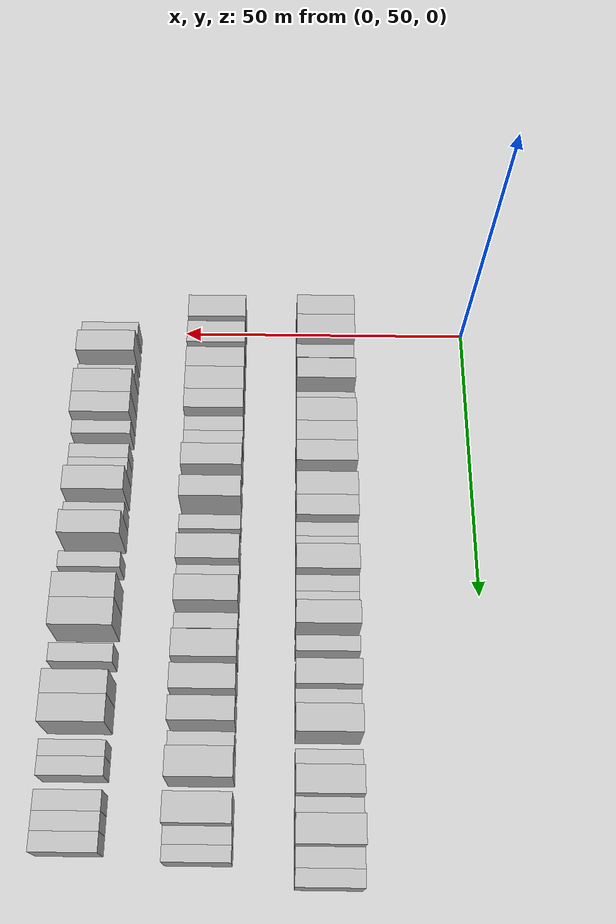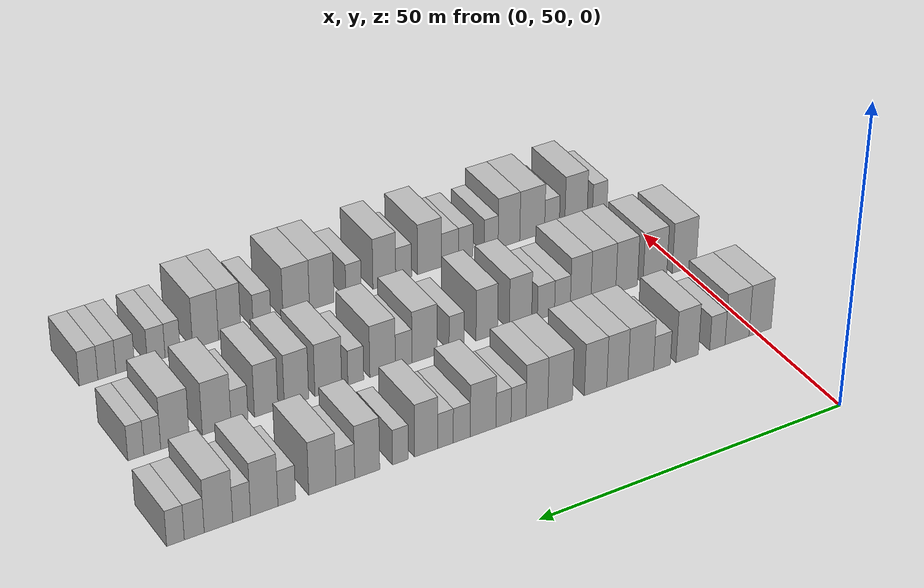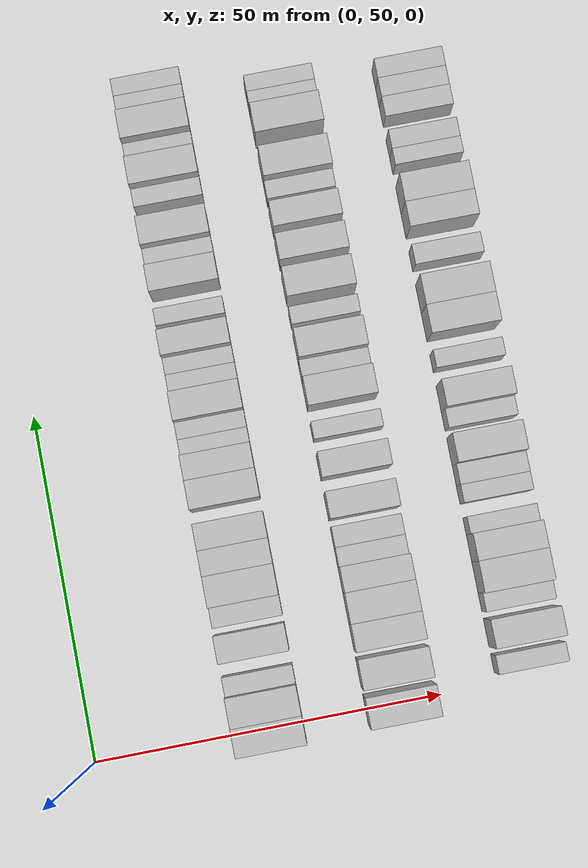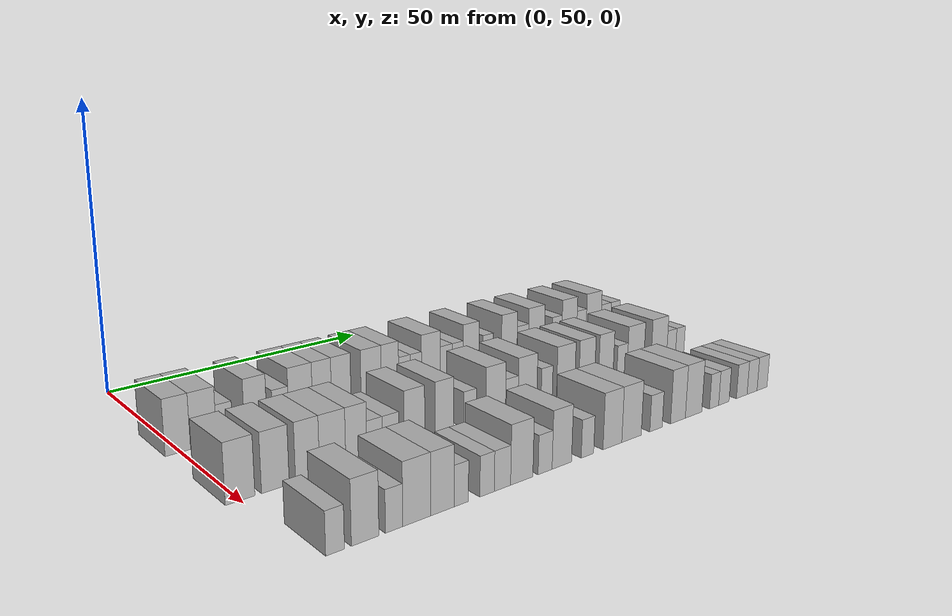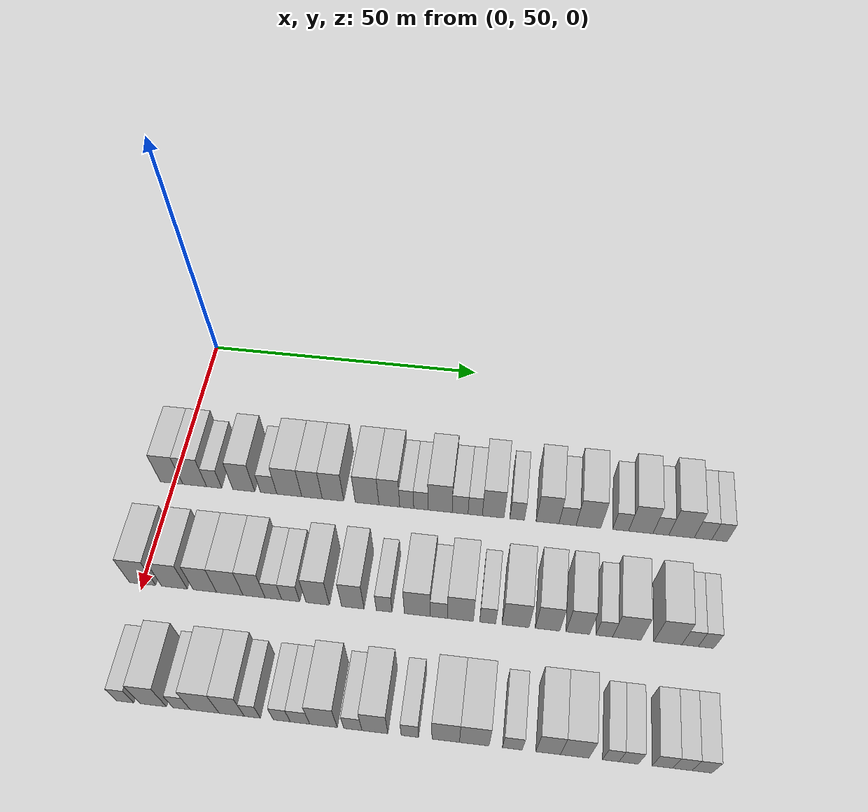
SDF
<sdf version="1.6">
 <world name="default">
  <model name="building_71">
   <static>1</static>
   <pose>25.0000 49.5405 0 0.000000 0.000000 0.000000</pose>
   <link name="link">
    <pose>0 0 4.50 0 0 0</pose>
    <collision name="collision"><geometry><box><size>10.0000 4.0025 9.0000</size></box></geometry></collision>
    <visual name="visual">
     <cast_shadows>0</cast_shadows>
     <geometry><box><size>10.0000 4.0025 9.0000</size></box></geometry>
     <material>
      <script>
       <uri>model://HANNAS_wall/materials/scripts</uri>
       <uri>model://HANNAS_wall/materials/textures</uri>
       <name>vrc/HANNAS_wall</name>
      </script>
     </material>
    </visual>
   </link>
  </model>
  <model name="building_72">
   <static>1</static>
   <pose>25.0000 53.6684 0 0.000000 0.000000 0.000000</pose>
   <link name="link">
    <pose>0 0 4.50 0 0 0</pose>
    <collision name="collision"><geometry><box><size>10.0000 4.2534 9.0000</size></box></geometry></collision>
    <visual name="visual">
     <cast_shadows>0</cast_shadows>
     <geometry><box><size>10.0000 4.2534 9.0000</size></box></geometry>
     <material>
      <script>
       <uri>model://HANNAS_wall/materials/scripts</uri>
       <uri>model://HANNAS_wall/materials/textures</uri>
       <name>vrc/HANNAS_wall</name>
      </script>
     </material>
    </visual>
   </link>
  </model>
  <model name="building_73">
   <static>1</static>
   <pose>25.0000 57.1466 0 0.000000 0.000000 0.000000</pose>
   <link name="link">
    <pose>0 0 3.00 0 0 0</pose>
    <collision name="collision"><geometry><box><size>10.0000 2.7031 6.0000</size></box></geometry></collision>
    <visual name="visual">
     <cast_shadows>0</cast_shadows>
     <geometry><box><size>10.0000 2.7031 6.0000</size></box></geometry>
     <material>
      <script>
       <uri>model://HANNAS_wall/materials/scripts</uri>
       <uri>model://HANNAS_wall/materials/textures</uri>
       <name>vrc/HANNAS_wall</name>
      </script>
     </material>
    </visual>
   </link>
  </model>
  <model name="building_74">
   <static>1</static>
   <pose>25.0000 62.4412 0 0.000000 0.000000 0.000000</pose>
   <link name="link">
    <pose>0 0 4.50 0 0 0</pose>
    <collision name="collision"><geometry><box><size>10.0000 3.8860 9.0000</size></box></geometry></collision>
    <visual name="visual">
     <cast_shadows>0</cast_shadows>
     <geometry><box><size>10.0000 3.8860 9.0000</size></box></geometry>
     <material>
      <script>
       <uri>model://HANNAS_wall/materials/scripts</uri>
       <uri>model://HANNAS_wall/materials/textures</uri>
       <name>vrc/HANNAS_wall</name>
      </script>
     </material>
    </visual>
   </link>
  </model>
  <model name="building_75">
   <static>1</static>
   <pose>25.0000 66.8327 0 0.000000 0.000000 0.000000</pose>
   <link name="link">
    <pose>0 0 3.00 0 0 0</pose>
    <collision name="collision"><geometry><box><size>10.0000 2.8970 6.0000</size></box></geometry></collision>
    <visual name="visual">
     <cast_shadows>0</cast_shadows>
     <geometry><box><size>10.0000 2.8970 6.0000</size></box></geometry>
     <material>
      <script>
       <uri>model://HANNAS_wall/materials/scripts</uri>
       <uri>model://HANNAS_wall/materials/textures</uri>
       <name>vrc/HANNAS_wall</name>
      </script>
     </material>
    </visual>
   </link>
  </model>
  <model name="building_76">
   <static>1</static>
   <pose>25.0000 70.4810 0 0.000000 0.000000 0.000000</pose>
   <link name="link">
    <pose>0 0 4.50 0 0 0</pose>
    <collision name="collision"><geometry><box><size>10.0000 4.3996 9.0000</size></box></geometry></collision>
    <visual name="visual">
     <cast_shadows>0</cast_shadows>
     <geometry><box><size>10.0000 4.3996 9.0000</size></box></geometry>
     <material>
      <script>
       <uri>model://HANNAS_wall/materials/scripts</uri>
       <uri>model://HANNAS_wall/materials/textures</uri>
       <name>vrc/HANNAS_wall</name>
      </script>
     </material>
    </visual>
   </link>
  </model>
  <model name="building_77">
   <static>1</static>
   <pose>25.0000 74.4822 0 0.000000 0.000000 0.000000</pose>
   <link name="link">
    <pose>0 0 4.50 0 0 0</pose>
    <collision name="collision"><geometry><box><size>10.0000 3.6027 9.0000</size></box></geometry></collision>
    <visual name="visual">
     <cast_shadows>0</cast_shadows>
     <geometry><box><size>10.0000 3.6027 9.0000</size></box></geometry>
     <material>
      <script>
       <uri>model://HANNAS_wall/materials/scripts</uri>
       <uri>model://HANNAS_wall/materials/textures</uri>
       <name>vrc/HANNAS_wall</name>
      </script>
     </material>
    </visual>
   </link>
  </model>
  <model name="building_78">
   <static>1</static>
   <pose>25.0000 78.1736 0 0.000000 0.000000 0.000000</pose>
   <link name="link">
    <pose>0 0 4.50 0 0 0</pose>
    <collision name="collision"><geometry><box><size>10.0000 3.7800 9.0000</size></box></geometry></collision>
    <visual name="visual">
     <cast_shadows>0</cast_shadows>
     <geometry><box><size>10.0000 3.7800 9.0000</size></box></geometry>
     <material>
      <script>
       <uri>model://HANNAS_wall/materials/scripts</uri>
       <uri>model://HANNAS_wall/materials/textures</uri>
       <name>vrc/HANNAS_wall</name>
      </script>
     </material>
    </visual>
   </link>
  </model>
  <model name="building_79">
   <static>1</static>
   <pose>25.0000 84.1291 0 0.000000 0.000000 0.000000</pose>
   <link name="link">
    <pose>0 0 4.50 0 0 0</pose>
    <collision name="collision"><geometry><box><size>10.0000 4.1311 9.0000</size></box></geometry></collision>
    <visual name="visual">
     <cast_shadows>0</cast_shadows>
     <geometry><box><size>10.0000 4.1311 9.0000</size></box></geometry>
     <material>
      <script>
       <uri>model://HANNAS_wall/materials/scripts</uri>
       <uri>model://HANNAS_wall/materials/textures</uri>
       <name>vrc/HANNAS_wall</name>
      </script>
     </material>
    </visual>
   </link>
  </model>
  <model name="building_80">
   <static>1</static>
   <pose>25.0000 87.9999 0 0.000000 0.000000 0.000000</pose>
   <link name="link">
    <pose>0 0 4.50 0 0 0</pose>
    <collision name="collision"><geometry><box><size>10.0000 3.6105 9.0000</size></box></geometry></collision>
    <visual name="visual">
     <cast_shadows>0</cast_shadows>
     <geometry><box><size>10.0000 3.6105 9.0000</size></box></geometry>
     <material>
      <script>
       <uri>model://HANNAS_wall/materials/scripts</uri>
       <uri>model://HANNAS_wall/materials/textures</uri>
       <name>vrc/HANNAS_wall</name>
      </script>
     </material>
    </visual>
   </link>
  </model>
  <model name="building_81">
   <static>1</static>
   <pose>25.0000 91.0216 0 0.000000 0.000000 0.000000</pose>
   <link name="link">
    <pose>0 0 3.00 0 0 0</pose>
    <collision name="collision"><geometry><box><size>10.0000 2.4329 6.0000</size></box></geometry></collision>
    <visual name="visual">
     <cast_shadows>0</cast_shadows>
     <geometry><box><size>10.0000 2.4329 6.0000</size></box></geometry>
     <material>
      <script>
       <uri>model://HANNAS_wall/materials/scripts</uri>
       <uri>model://HANNAS_wall/materials/textures</uri>
       <name>vrc/HANNAS_wall</name>
      </script>
     </material>
    </visual>
   </link>
  </model>
  <model name="building_82">
   <static>1</static>
   <pose>25.0000 93.4734 0 0.000000 0.000000 0.000000</pose>
   <link name="link">
    <pose>0 0 3.00 0 0 0</pose>
    <collision name="collision"><geometry><box><size>10.0000 2.4706 6.0000</size></box></geometry></collision>
    <visual name="visual">
     <cast_shadows>0</cast_shadows>
     <geometry><box><size>10.0000 2.4706 6.0000</size></box></geometry>
     <material>
      <script>
       <uri>model://HANNAS_wall/materials/scripts</uri>
       <uri>model://HANNAS_wall/materials/textures</uri>
       <name>vrc/HANNAS_wall</name>
      </script>
     </material>
    </visual>
   </link>
  </model>
  <model name="building_83">
   <static>1</static>
   <pose>25.0000 96.7919 0 0.000000 0.000000 0.000000</pose>
   <link name="link">
    <pose>0 0 4.50 0 0 0</pose>
    <collision name="collision"><geometry><box><size>10.0000 4.1664 9.0000</size></box></geometry></collision>
    <visual name="visual">
     <cast_shadows>0</cast_shadows>
     <geometry><box><size>10.0000 4.1664 9.0000</size></box></geometry>
     <material>
      <script>
       <uri>model://HANNAS_wall/materials/scripts</uri>
       <uri>model://HANNAS_wall/materials/textures</uri>
       <name>vrc/HANNAS_wall</name>
      </script>
     </material>
    </visual>
   </link>
  </model>
  <model name="building_84">
   <static>1</static>
   <pose>25.0000 100.2427 0 0.000000 0.000000 0.000000</pose>
   <link name="link">
    <pose>0 0 3.00 0 0 0</pose>
    <collision name="collision"><geometry><box><size>10.0000 2.7352 6.0000</size></box></geometry></collision>
    <visual name="visual">
     <cast_shadows>0</cast_shadows>
     <geometry><box><size>10.0000 2.7352 6.0000</size></box></geometry>
     <material>
      <script>
       <uri>model://HANNAS_wall/materials/scripts</uri>
       <uri>model://HANNAS_wall/materials/textures</uri>
       <name>vrc/HANNAS_wall</name>
      </script>
     </material>
    </visual>
   </link>
  </model>
  <model name="building_85">
   <static>1</static>
   <pose>25.0000 102.8354 0 0.000000 0.000000 0.000000</pose>
   <link name="link">
    <pose>0 0 3.00 0 0 0</pose>
    <collision name="collision"><geometry><box><size>10.0000 2.4502 6.0000</size></box></geometry></collision>
    <visual name="visual">
     <cast_shadows>0</cast_shadows>
     <geometry><box><size>10.0000 2.4502 6.0000</size></box></geometry>
     <material>
      <script>
       <uri>model://HANNAS_wall/materials/scripts</uri>
       <uri>model://HANNAS_wall/materials/textures</uri>
       <name>vrc/HANNAS_wall</name>
      </script>
     </material>
    </visual>
   </link>
  </model>
  <model name="building_86">
   <static>1</static>
   <pose>25.0000 105.9198 0 0.000000 0.000000 0.000000</pose>
   <link name="link">
    <pose>0 0 4.50 0 0 0</pose>
    <collision name="collision"><geometry><box><size>10.0000 3.7187 9.0000</size></box></geometry></collision>
    <visual name="visual">
     <cast_shadows>0</cast_shadows>
     <geometry><box><size>10.0000 3.7187 9.0000</size></box></geometry>
     <material>
      <script>
       <uri>model://HANNAS_wall/materials/scripts</uri>
       <uri>model://HANNAS_wall/materials/textures</uri>
       <name>vrc/HANNAS_wall</name>
      </script>
     </material>
    </visual>
   </link>
  </model>
  <model name="building_87">
   <static>1</static>
   <pose>25.0000 110.0235 0 0.000000 0.000000 0.000000</pose>
   <link name="link">
    <pose>0 0 3.00 0 0 0</pose>
    <collision name="collision"><geometry><box><size>10.0000 2.4886 6.0000</size></box></geometry></collision>
    <visual name="visual">
     <cast_shadows>0</cast_shadows>
     <geometry><box><size>10.0000 2.4886 6.0000</size></box></geometry>
     <material>
      <script>
       <uri>model://HANNAS_wall/materials/scripts</uri>
       <uri>model://HANNAS_wall/materials/textures</uri>
       <name>vrc/HANNAS_wall</name>
      </script>
     </material>
    </visual>
   </link>
  </model>
  <model name="building_88">
   <static>1</static>
   <pose>25.0000 115.2164 0 0.000000 0.000000 0.000000</pose>
   <link name="link">
    <pose>0 0 4.50 0 0 0</pose>
    <collision name="collision"><geometry><box><size>10.0000 3.8973 9.0000</size></box></geometry></collision>
    <visual name="visual">
     <cast_shadows>0</cast_shadows>
     <geometry><box><size>10.0000 3.8973 9.0000</size></box></geometry>
     <material>
      <script>
       <uri>model://HANNAS_wall/materials/scripts</uri>
       <uri>model://HANNAS_wall/materials/textures</uri>
       <name>vrc/HANNAS_wall</name>
      </script>
     </material>
    </visual>
   </link>
  </model>
  <model name="building_89">
   <static>1</static>
   <pose>25.0000 118.6167 0 0.000000 0.000000 0.000000</pose>
   <link name="link">
    <pose>0 0 3.00 0 0 0</pose>
    <collision name="collision"><geometry><box><size>10.0000 2.9034 6.0000</size></box></geometry></collision>
    <visual name="visual">
     <cast_shadows>0</cast_shadows>
     <geometry><box><size>10.0000 2.9034 6.0000</size></box></geometry>
     <material>
      <script>
       <uri>model://HANNAS_wall/materials/scripts</uri>
       <uri>model://HANNAS_wall/materials/textures</uri>
       <name>vrc/HANNAS_wall</name>
      </script>
     </material>
    </visual>
   </link>
  </model>
  <model name="building_90">
   <static>1</static>
   <pose>25.0000 122.1538 0 0.000000 0.000000 0.000000</pose>
   <link name="link">
    <pose>0 0 4.50 0 0 0</pose>
    <collision name="collision"><geometry><box><size>10.0000 4.1708 9.0000</size></box></geometry></collision>
    <visual name="visual">
     <cast_shadows>0</cast_shadows>
     <geometry><box><size>10.0000 4.1708 9.0000</size></box></geometry>
     <material>
      <script>
       <uri>model://HANNAS_wall/materials/scripts</uri>
       <uri>model://HANNAS_wall/materials/textures</uri>
       <name>vrc/HANNAS_wall</name>
      </script>
     </material>
    </visual>
   </link>
  </model>
  <model name="building_91">
   <static>1</static>
   <pose>25.0000 127.5781 0 0.000000 0.000000 0.000000</pose>
   <link name="link">
    <pose>0 0 3.00 0 0 0</pose>
    <collision name="collision"><geometry><box><size>10.0000 2.6778 6.0000</size></box></geometry></collision>
    <visual name="visual">
     <cast_shadows>0</cast_shadows>
     <geometry><box><size>10.0000 2.6778 6.0000</size></box></geometry>
     <material>
      <script>
       <uri>model://HANNAS_wall/materials/scripts</uri>
       <uri>model://HANNAS_wall/materials/textures</uri>
       <name>vrc/HANNAS_wall</name>
      </script>
     </material>
    </visual>
   </link>
  </model>
  <model name="building_92">
   <static>1</static>
   <pose>25.0000 130.9732 0 0.000000 0.000000 0.000000</pose>
   <link name="link">
    <pose>0 0 4.50 0 0 0</pose>
    <collision name="collision"><geometry><box><size>10.0000 4.1124 9.0000</size></box></geometry></collision>
    <visual name="visual">
     <cast_shadows>0</cast_shadows>
     <geometry><box><size>10.0000 4.1124 9.0000</size></box></geometry>
     <material>
      <script>
       <uri>model://HANNAS_wall/materials/scripts</uri>
       <uri>model://HANNAS_wall/materials/textures</uri>
       <name>vrc/HANNAS_wall</name>
      </script>
     </material>
    </visual>
   </link>
  </model>
  <model name="building_93">
   <static>1</static>
   <pose>25.0000 134.3595 0 0.000000 0.000000 0.000000</pose>
   <link name="link">
    <pose>0 0 3.00 0 0 0</pose>
    <collision name="collision"><geometry><box><size>10.0000 2.6601 6.0000</size></box></geometry></collision>
    <visual name="visual">
     <cast_shadows>0</cast_shadows>
     <geometry><box><size>10.0000 2.6601 6.0000</size></box></geometry>
     <material>
      <script>
       <uri>model://HANNAS_wall/materials/scripts</uri>
       <uri>model://HANNAS_wall/materials/textures</uri>
       <name>vrc/HANNAS_wall</name>
      </script>
     </material>
    </visual>
   </link>
  </model>
  <model name="building_94">
   <static>1</static>
   <pose>25.0000 137.8046 0 0.000000 0.000000 0.000000</pose>
   <link name="link">
    <pose>0 0 4.50 0 0 0</pose>
    <collision name="collision"><geometry><box><size>10.0000 4.2302 9.0000</size></box></geometry></collision>
    <visual name="visual">
     <cast_shadows>0</cast_shadows>
     <geometry><box><size>10.0000 4.2302 9.0000</size></box></geometry>
     <material>
      <script>
       <uri>model://HANNAS_wall/materials/scripts</uri>
       <uri>model://HANNAS_wall/materials/textures</uri>
       <name>vrc/HANNAS_wall</name>
      </script>
     </material>
    </visual>
   </link>
  </model>
  <model name="building_95">
   <static>1</static>
   <pose>25.0000 141.3799 0 0.000000 0.000000 0.000000</pose>
   <link name="link">
    <pose>0 0 3.00 0 0 0</pose>
    <collision name="collision"><geometry><box><size>10.0000 2.9204 6.0000</size></box></geometry></collision>
    <visual name="visual">
     <cast_shadows>0</cast_shadows>
     <geometry><box><size>10.0000 2.9204 6.0000</size></box></geometry>
     <material>
      <script>
       <uri>model://HANNAS_wall/materials/scripts</uri>
       <uri>model://HANNAS_wall/materials/textures</uri>
       <name>vrc/HANNAS_wall</name>
      </script>
     </material>
    </visual>
   </link>
  </model>
  <model name="building_96">
   <static>1</static>
   <pose>25.0000 144.1325 0 0.000000 0.000000 0.000000</pose>
   <link name="link">
    <pose>0 0 3.00 0 0 0</pose>
    <collision name="collision"><geometry><box><size>10.0000 2.5849 6.0000</size></box></geometry></collision>
    <visual name="visual">
     <cast_shadows>0</cast_shadows>
     <geometry><box><size>10.0000 2.5849 6.0000</size></box></geometry>
     <material>
      <script>
       <uri>model://HANNAS_wall/materials/scripts</uri>
       <uri>model://HANNAS_wall/materials/textures</uri>
       <name>vrc/HANNAS_wall</name>
      </script>
     </material>
    </visual>
   </link>
  </model>
  <model name="building_185">
   <static>1</static>
   <pose>44.0000 50.0052 0 0.000000 0.000000 0.000000</pose>
   <link name="link">
    <pose>0 0 4.50 0 0 0</pose>
    <collision name="collision"><geometry><box><size>10.0000 4.3875 9.0000</size></box></geometry></collision>
    <visual name="visual">
     <cast_shadows>0</cast_shadows>
     <geometry><box><size>10.0000 4.3875 9.0000</size></box></geometry>
     <material>
      <script>
       <uri>model://HANNAS_wall/materials/scripts</uri>
       <uri>model://HANNAS_wall/materials/textures</uri>
       <name>vrc/HANNAS_wall</name>
      </script>
     </material>
    </visual>
   </link>
  </model>
  <model name="building_186">
   <static>1</static>
   <pose>44.0000 55.3445 0 0.000000 0.000000 0.000000</pose>
   <link name="link">
    <pose>0 0 4.50 0 0 0</pose>
    <collision name="collision"><geometry><box><size>10.0000 4.2910 9.0000</size></box></geometry></collision>
    <visual name="visual">
     <cast_shadows>0</cast_shadows>
     <geometry><box><size>10.0000 4.2910 9.0000</size></box></geometry>
     <material>
      <script>
       <uri>model://HANNAS_wall/materials/scripts</uri>
       <uri>model://HANNAS_wall/materials/textures</uri>
       <name>vrc/HANNAS_wall</name>
      </script>
     </material>
    </visual>
   </link>
  </model>
  <model name="building_187">
   <static>1</static>
   <pose>44.0000 60.4373 0 0.000000 0.000000 0.000000</pose>
   <link name="link">
    <pose>0 0 4.50 0 0 0</pose>
    <collision name="collision"><geometry><box><size>10.0000 3.8946 9.0000</size></box></geometry></collision>
    <visual name="visual">
     <cast_shadows>0</cast_shadows>
     <geometry><box><size>10.0000 3.8946 9.0000</size></box></geometry>
     <material>
      <script>
       <uri>model://HANNAS_wall/materials/scripts</uri>
       <uri>model://HANNAS_wall/materials/textures</uri>
       <name>vrc/HANNAS_wall</name>
      </script>
     </material>
    </visual>
   </link>
  </model>
  <model name="building_188">
   <static>1</static>
   <pose>44.0000 64.5824 0 0.000000 0.000000 0.000000</pose>
   <link name="link">
    <pose>0 0 4.50 0 0 0</pose>
    <collision name="collision"><geometry><box><size>10.0000 4.3955 9.0000</size></box></geometry></collision>
    <visual name="visual">
     <cast_shadows>0</cast_shadows>
     <geometry><box><size>10.0000 4.3955 9.0000</size></box></geometry>
     <material>
      <script>
       <uri>model://HANNAS_wall/materials/scripts</uri>
       <uri>model://HANNAS_wall/materials/textures</uri>
       <name>vrc/HANNAS_wall</name>
      </script>
     </material>
    </visual>
   </link>
  </model>
  <model name="building_189">
   <static>1</static>
   <pose>44.0000 68.6004 0 0.000000 0.000000 0.000000</pose>
   <link name="link">
    <pose>0 0 4.50 0 0 0</pose>
    <collision name="collision"><geometry><box><size>10.0000 3.6405 9.0000</size></box></geometry></collision>
    <visual name="visual">
     <cast_shadows>0</cast_shadows>
     <geometry><box><size>10.0000 3.6405 9.0000</size></box></geometry>
     <material>
      <script>
       <uri>model://HANNAS_wall/materials/scripts</uri>
       <uri>model://HANNAS_wall/materials/textures</uri>
       <name>vrc/HANNAS_wall</name>
      </script>
     </material>
    </visual>
   </link>
  </model>
  <model name="building_190">
   <static>1</static>
   <pose>44.0000 71.7989 0 0.000000 0.000000 0.000000</pose>
   <link name="link">
    <pose>0 0 3.00 0 0 0</pose>
    <collision name="collision"><geometry><box><size>10.0000 2.7565 6.0000</size></box></geometry></collision>
    <visual name="visual">
     <cast_shadows>0</cast_shadows>
     <geometry><box><size>10.0000 2.7565 6.0000</size></box></geometry>
     <material>
      <script>
       <uri>model://HANNAS_wall/materials/scripts</uri>
       <uri>model://HANNAS_wall/materials/textures</uri>
       <name>vrc/HANNAS_wall</name>
      </script>
     </material>
    </visual>
   </link>
  </model>
  <model name="building_191">
   <static>1</static>
   <pose>44.0000 74.6646 0 0.000000 0.000000 0.000000</pose>
   <link name="link">
    <pose>0 0 3.00 0 0 0</pose>
    <collision name="collision"><geometry><box><size>10.0000 2.9750 6.0000</size></box></geometry></collision>
    <visual name="visual">
     <cast_shadows>0</cast_shadows>
     <geometry><box><size>10.0000 2.9750 6.0000</size></box></geometry>
     <material>
      <script>
       <uri>model://HANNAS_wall/materials/scripts</uri>
       <uri>model://HANNAS_wall/materials/textures</uri>
       <name>vrc/HANNAS_wall</name>
      </script>
     </material>
    </visual>
   </link>
  </model>
  <model name="building_192">
   <static>1</static>
   <pose>44.0000 79.0824 0 0.000000 0.000000 0.000000</pose>
   <link name="link">
    <pose>0 0 4.50 0 0 0</pose>
    <collision name="collision"><geometry><box><size>10.0000 3.8605 9.0000</size></box></geometry></collision>
    <visual name="visual">
     <cast_shadows>0</cast_shadows>
     <geometry><box><size>10.0000 3.8605 9.0000</size></box></geometry>
     <material>
      <script>
       <uri>model://HANNAS_wall/materials/scripts</uri>
       <uri>model://HANNAS_wall/materials/textures</uri>
       <name>vrc/HANNAS_wall</name>
      </script>
     </material>
    </visual>
   </link>
  </model>
  <model name="building_193">
   <static>1</static>
   <pose>44.0000 84.8441 0 0.000000 0.000000 0.000000</pose>
   <link name="link">
    <pose>0 0 4.50 0 0 0</pose>
    <collision name="collision"><geometry><box><size>10.0000 3.6630 9.0000</size></box></geometry></collision>
    <visual name="visual">
     <cast_shadows>0</cast_shadows>
     <geometry><box><size>10.0000 3.6630 9.0000</size></box></geometry>
     <material>
      <script>
       <uri>model://HANNAS_wall/materials/scripts</uri>
       <uri>model://HANNAS_wall/materials/textures</uri>
       <name>vrc/HANNAS_wall</name>
      </script>
     </material>
    </visual>
   </link>
  </model>
  <model name="building_194">
   <static>1</static>
   <pose>44.0000 89.9505 0 0.000000 0.000000 0.000000</pose>
   <link name="link">
    <pose>0 0 3.00 0 0 0</pose>
    <collision name="collision"><geometry><box><size>10.0000 2.5496 6.0000</size></box></geometry></collision>
    <visual name="visual">
     <cast_shadows>0</cast_shadows>
     <geometry><box><size>10.0000 2.5496 6.0000</size></box></geometry>
     <material>
      <script>
       <uri>model://HANNAS_wall/materials/scripts</uri>
       <uri>model://HANNAS_wall/materials/textures</uri>
       <name>vrc/HANNAS_wall</name>
      </script>
     </material>
    </visual>
   </link>
  </model>
  <model name="building_195">
   <static>1</static>
   <pose>44.0000 95.3227 0 0.000000 0.000000 0.000000</pose>
   <link name="link">
    <pose>0 0 4.50 0 0 0</pose>
    <collision name="collision"><geometry><box><size>10.0000 4.1949 9.0000</size></box></geometry></collision>
    <visual name="visual">
     <cast_shadows>0</cast_shadows>
     <geometry><box><size>10.0000 4.1949 9.0000</size></box></geometry>
     <material>
      <script>
       <uri>model://HANNAS_wall/materials/scripts</uri>
       <uri>model://HANNAS_wall/materials/textures</uri>
       <name>vrc/HANNAS_wall</name>
      </script>
     </material>
    </visual>
   </link>
  </model>
  <model name="building_196">
   <static>1</static>
   <pose>44.0000 98.7895 0 0.000000 0.000000 0.000000</pose>
   <link name="link">
    <pose>0 0 3.00 0 0 0</pose>
    <collision name="collision"><geometry><box><size>10.0000 2.7387 6.0000</size></box></geometry></collision>
    <visual name="visual">
     <cast_shadows>0</cast_shadows>
     <geometry><box><size>10.0000 2.7387 6.0000</size></box></geometry>
     <material>
      <script>
       <uri>model://HANNAS_wall/materials/scripts</uri>
       <uri>model://HANNAS_wall/materials/textures</uri>
       <name>vrc/HANNAS_wall</name>
      </script>
     </material>
    </visual>
   </link>
  </model>
  <model name="building_197">
   <static>1</static>
   <pose>44.0000 102.2542 0 0.000000 0.000000 0.000000</pose>
   <link name="link">
    <pose>0 0 4.50 0 0 0</pose>
    <collision name="collision"><geometry><box><size>10.0000 4.1907 9.0000</size></box></geometry></collision>
    <visual name="visual">
     <cast_shadows>0</cast_shadows>
     <geometry><box><size>10.0000 4.1907 9.0000</size></box></geometry>
     <material>
      <script>
       <uri>model://HANNAS_wall/materials/scripts</uri>
       <uri>model://HANNAS_wall/materials/textures</uri>
       <name>vrc/HANNAS_wall</name>
      </script>
     </material>
    </visual>
   </link>
  </model>
  <model name="building_198">
   <static>1</static>
   <pose>44.0000 106.6378 0 0.000000 0.000000 0.000000</pose>
   <link name="link">
    <pose>0 0 3.00 0 0 0</pose>
    <collision name="collision"><geometry><box><size>10.0000 2.5766 6.0000</size></box></geometry></collision>
    <visual name="visual">
     <cast_shadows>0</cast_shadows>
     <geometry><box><size>10.0000 2.5766 6.0000</size></box></geometry>
     <material>
      <script>
       <uri>model://HANNAS_wall/materials/scripts</uri>
       <uri>model://HANNAS_wall/materials/textures</uri>
       <name>vrc/HANNAS_wall</name>
      </script>
     </material>
    </visual>
   </link>
  </model>
  <model name="building_199">
   <static>1</static>
   <pose>44.0000 111.0820 0 0.000000 0.000000 0.000000</pose>
   <link name="link">
    <pose>0 0 4.50 0 0 0</pose>
    <collision name="collision"><geometry><box><size>10.0000 4.3118 9.0000</size></box></geometry></collision>
    <visual name="visual">
     <cast_shadows>0</cast_shadows>
     <geometry><box><size>10.0000 4.3118 9.0000</size></box></geometry>
     <material>
      <script>
       <uri>model://HANNAS_wall/materials/scripts</uri>
       <uri>model://HANNAS_wall/materials/textures</uri>
       <name>vrc/HANNAS_wall</name>
      </script>
     </material>
    </visual>
   </link>
  </model>
  <model name="building_200">
   <static>1</static>
   <pose>44.0000 116.1791 0 0.000000 0.000000 0.000000</pose>
   <link name="link">
    <pose>0 0 4.50 0 0 0</pose>
    <collision name="collision"><geometry><box><size>10.0000 3.8823 9.0000</size></box></geometry></collision>
    <visual name="visual">
     <cast_shadows>0</cast_shadows>
     <geometry><box><size>10.0000 3.8823 9.0000</size></box></geometry>
     <material>
      <script>
       <uri>model://HANNAS_wall/materials/scripts</uri>
       <uri>model://HANNAS_wall/materials/textures</uri>
       <name>vrc/HANNAS_wall</name>
      </script>
     </material>
    </visual>
   </link>
  </model>
  <model name="building_201">
   <static>1</static>
   <pose>44.0000 120.9773 0 0.000000 0.000000 0.000000</pose>
   <link name="link">
    <pose>0 0 4.50 0 0 0</pose>
    <collision name="collision"><geometry><box><size>10.0000 3.7142 9.0000</size></box></geometry></collision>
    <visual name="visual">
     <cast_shadows>0</cast_shadows>
     <geometry><box><size>10.0000 3.7142 9.0000</size></box></geometry>
     <material>
      <script>
       <uri>model://HANNAS_wall/materials/scripts</uri>
       <uri>model://HANNAS_wall/materials/textures</uri>
       <name>vrc/HANNAS_wall</name>
      </script>
     </material>
    </visual>
   </link>
  </model>
  <model name="building_202">
   <static>1</static>
   <pose>44.0000 125.1666 0 0.000000 0.000000 0.000000</pose>
   <link name="link">
    <pose>0 0 3.00 0 0 0</pose>
    <collision name="collision"><geometry><box><size>10.0000 2.6644 6.0000</size></box></geometry></collision>
    <visual name="visual">
     <cast_shadows>0</cast_shadows>
     <geometry><box><size>10.0000 2.6644 6.0000</size></box></geometry>
     <material>
      <script>
       <uri>model://HANNAS_wall/materials/scripts</uri>
       <uri>model://HANNAS_wall/materials/textures</uri>
       <name>vrc/HANNAS_wall</name>
      </script>
     </material>
    </visual>
   </link>
  </model>
  <model name="building_203">
   <static>1</static>
   <pose>44.0000 128.7242 0 0.000000 0.000000 0.000000</pose>
   <link name="link">
    <pose>0 0 4.50 0 0 0</pose>
    <collision name="collision"><geometry><box><size>10.0000 4.4508 9.0000</size></box></geometry></collision>
    <visual name="visual">
     <cast_shadows>0</cast_shadows>
     <geometry><box><size>10.0000 4.4508 9.0000</size></box></geometry>
     <material>
      <script>
       <uri>model://HANNAS_wall/materials/scripts</uri>
       <uri>model://HANNAS_wall/materials/textures</uri>
       <name>vrc/HANNAS_wall</name>
      </script>
     </material>
    </visual>
   </link>
  </model>
  <model name="building_204">
   <static>1</static>
   <pose>44.0000 135.1383 0 0.000000 0.000000 0.000000</pose>
   <link name="link">
    <pose>0 0 4.50 0 0 0</pose>
    <collision name="collision"><geometry><box><size>10.0000 4.3773 9.0000</size></box></geometry></collision>
    <visual name="visual">
     <cast_shadows>0</cast_shadows>
     <geometry><box><size>10.0000 4.3773 9.0000</size></box></geometry>
     <material>
      <script>
       <uri>model://HANNAS_wall/materials/scripts</uri>
       <uri>model://HANNAS_wall/materials/textures</uri>
       <name>vrc/HANNAS_wall</name>
      </script>
     </material>
    </visual>
   </link>
  </model>
  <model name="building_205">
   <static>1</static>
   <pose>44.0000 138.6126 0 0.000000 0.000000 0.000000</pose>
   <link name="link">
    <pose>0 0 3.00 0 0 0</pose>
    <collision name="collision"><geometry><box><size>10.0000 2.5712 6.0000</size></box></geometry></collision>
    <visual name="visual">
     <cast_shadows>0</cast_shadows>
     <geometry><box><size>10.0000 2.5712 6.0000</size></box></geometry>
     <material>
      <script>
       <uri>model://HANNAS_wall/materials/scripts</uri>
       <uri>model://HANNAS_wall/materials/textures</uri>
       <name>vrc/HANNAS_wall</name>
      </script>
     </material>
    </visual>
   </link>
  </model>
  <model name="building_206">
   <static>1</static>
   <pose>44.0000 141.1053 0 0.000000 0.000000 0.000000</pose>
   <link name="link">
    <pose>0 0 3.00 0 0 0</pose>
    <collision name="collision"><geometry><box><size>10.0000 2.4143 6.0000</size></box></geometry></collision>
    <visual name="visual">
     <cast_shadows>0</cast_shadows>
     <geometry><box><size>10.0000 2.4143 6.0000</size></box></geometry>
     <material>
      <script>
       <uri>model://HANNAS_wall/materials/scripts</uri>
       <uri>model://HANNAS_wall/materials/textures</uri>
       <name>vrc/HANNAS_wall</name>
      </script>
     </material>
    </visual>
   </link>
  </model>
  <model name="building_304">
   <static>1</static>
   <pose>63.0000 52.9789 0 0.000000 0.000000 0.000000</pose>
   <link name="link">
    <pose>0 0 3.00 0 0 0</pose>
    <collision name="collision"><geometry><box><size>10.0000 2.6867 6.0000</size></box></geometry></collision>
    <visual name="visual">
     <cast_shadows>0</cast_shadows>
     <geometry><box><size>10.0000 2.6867 6.0000</size></box></geometry>
     <material>
      <script>
       <uri>model://HANNAS_wall/materials/scripts</uri>
       <uri>model://HANNAS_wall/materials/textures</uri>
       <name>vrc/HANNAS_wall</name>
      </script>
     </material>
    </visual>
   </link>
  </model>
  <model name="building_305">
   <static>1</static>
   <pose>63.0000 57.3677 0 0.000000 0.000000 0.000000</pose>
   <link name="link">
    <pose>0 0 4.50 0 0 0</pose>
    <collision name="collision"><geometry><box><size>10.0000 4.0910 9.0000</size></box></geometry></collision>
    <visual name="visual">
     <cast_shadows>0</cast_shadows>
     <geometry><box><size>10.0000 4.0910 9.0000</size></box></geometry>
     <material>
      <script>
       <uri>model://HANNAS_wall/materials/scripts</uri>
       <uri>model://HANNAS_wall/materials/textures</uri>
       <name>vrc/HANNAS_wall</name>
      </script>
     </material>
    </visual>
   </link>
  </model>
  <model name="building_306">
   <static>1</static>
   <pose>63.0000 61.7534 0 0.000000 0.000000 0.000000</pose>
   <link name="link">
    <pose>0 0 3.00 0 0 0</pose>
    <collision name="collision"><geometry><box><size>10.0000 2.6804 6.0000</size></box></geometry></collision>
    <visual name="visual">
     <cast_shadows>0</cast_shadows>
     <geometry><box><size>10.0000 2.6804 6.0000</size></box></geometry>
     <material>
      <script>
       <uri>model://HANNAS_wall/materials/scripts</uri>
       <uri>model://HANNAS_wall/materials/textures</uri>
       <name>vrc/HANNAS_wall</name>
      </script>
     </material>
    </visual>
   </link>
  </model>
  <model name="building_307">
   <static>1</static>
   <pose>63.0000 65.3394 0 0.000000 0.000000 0.000000</pose>
   <link name="link">
    <pose>0 0 4.50 0 0 0</pose>
    <collision name="collision"><geometry><box><size>10.0000 4.4916 9.0000</size></box></geometry></collision>
    <visual name="visual">
     <cast_shadows>0</cast_shadows>
     <geometry><box><size>10.0000 4.4916 9.0000</size></box></geometry>
     <material>
      <script>
       <uri>model://HANNAS_wall/materials/scripts</uri>
       <uri>model://HANNAS_wall/materials/textures</uri>
       <name>vrc/HANNAS_wall</name>
      </script>
     </material>
    </visual>
   </link>
  </model>
  <model name="building_308">
   <static>1</static>
   <pose>63.0000 69.5299 0 0.000000 0.000000 0.000000</pose>
   <link name="link">
    <pose>0 0 4.50 0 0 0</pose>
    <collision name="collision"><geometry><box><size>10.0000 3.8896 9.0000</size></box></geometry></collision>
    <visual name="visual">
     <cast_shadows>0</cast_shadows>
     <geometry><box><size>10.0000 3.8896 9.0000</size></box></geometry>
     <material>
      <script>
       <uri>model://HANNAS_wall/materials/scripts</uri>
       <uri>model://HANNAS_wall/materials/textures</uri>
       <name>vrc/HANNAS_wall</name>
      </script>
     </material>
    </visual>
   </link>
  </model>
  <model name="building_309">
   <static>1</static>
   <pose>63.0000 72.7063 0 0.000000 0.000000 0.000000</pose>
   <link name="link">
    <pose>0 0 3.00 0 0 0</pose>
    <collision name="collision"><geometry><box><size>10.0000 2.4631 6.0000</size></box></geometry></collision>
    <visual name="visual">
     <cast_shadows>0</cast_shadows>
     <geometry><box><size>10.0000 2.4631 6.0000</size></box></geometry>
     <material>
      <script>
       <uri>model://HANNAS_wall/materials/scripts</uri>
       <uri>model://HANNAS_wall/materials/textures</uri>
       <name>vrc/HANNAS_wall</name>
      </script>
     </material>
    </visual>
   </link>
  </model>
  <model name="building_310">
   <static>1</static>
   <pose>63.0000 77.2254 0 0.000000 0.000000 0.000000</pose>
   <link name="link">
    <pose>0 0 3.00 0 0 0</pose>
    <collision name="collision"><geometry><box><size>10.0000 2.5750 6.0000</size></box></geometry></collision>
    <visual name="visual">
     <cast_shadows>0</cast_shadows>
     <geometry><box><size>10.0000 2.5750 6.0000</size></box></geometry>
     <material>
      <script>
       <uri>model://HANNAS_wall/materials/scripts</uri>
       <uri>model://HANNAS_wall/materials/textures</uri>
       <name>vrc/HANNAS_wall</name>
      </script>
     </material>
    </visual>
   </link>
  </model>
  <model name="building_311">
   <static>1</static>
   <pose>63.0000 80.0028 0 0.000000 0.000000 0.000000</pose>
   <link name="link">
    <pose>0 0 3.00 0 0 0</pose>
    <collision name="collision"><geometry><box><size>10.0000 2.9799 6.0000</size></box></geometry></collision>
    <visual name="visual">
     <cast_shadows>0</cast_shadows>
     <geometry><box><size>10.0000 2.9799 6.0000</size></box></geometry>
     <material>
      <script>
       <uri>model://HANNAS_wall/materials/scripts</uri>
       <uri>model://HANNAS_wall/materials/textures</uri>
       <name>vrc/HANNAS_wall</name>
      </script>
     </material>
    </visual>
   </link>
  </model>
  <model name="building_312">
   <static>1</static>
   <pose>63.0000 83.5930 0 0.000000 0.000000 0.000000</pose>
   <link name="link">
    <pose>0 0 4.50 0 0 0</pose>
    <collision name="collision"><geometry><box><size>10.0000 4.2005 9.0000</size></box></geometry></collision>
    <visual name="visual">
     <cast_shadows>0</cast_shadows>
     <geometry><box><size>10.0000 4.2005 9.0000</size></box></geometry>
     <material>
      <script>
       <uri>model://HANNAS_wall/materials/scripts</uri>
       <uri>model://HANNAS_wall/materials/textures</uri>
       <name>vrc/HANNAS_wall</name>
      </script>
     </material>
    </visual>
   </link>
  </model>
  <model name="building_313">
   <static>1</static>
   <pose>63.0000 88.0673 0 0.000000 0.000000 0.000000</pose>
   <link name="link">
    <pose>0 0 3.00 0 0 0</pose>
    <collision name="collision"><geometry><box><size>10.0000 2.7481 6.0000</size></box></geometry></collision>
    <visual name="visual">
     <cast_shadows>0</cast_shadows>
     <geometry><box><size>10.0000 2.7481 6.0000</size></box></geometry>
     <material>
      <script>
       <uri>model://HANNAS_wall/materials/scripts</uri>
       <uri>model://HANNAS_wall/materials/textures</uri>
       <name>vrc/HANNAS_wall</name>
      </script>
     </material>
    </visual>
   </link>
  </model>
  <model name="building_314">
   <static>1</static>
   <pose>63.0000 91.3987 0 0.000000 0.000000 0.000000</pose>
   <link name="link">
    <pose>0 0 4.50 0 0 0</pose>
    <collision name="collision"><geometry><box><size>10.0000 3.9148 9.0000</size></box></geometry></collision>
    <visual name="visual">
     <cast_shadows>0</cast_shadows>
     <geometry><box><size>10.0000 3.9148 9.0000</size></box></geometry>
     <material>
      <script>
       <uri>model://HANNAS_wall/materials/scripts</uri>
       <uri>model://HANNAS_wall/materials/textures</uri>
       <name>vrc/HANNAS_wall</name>
      </script>
     </material>
    </visual>
   </link>
  </model>
  <model name="building_315">
   <static>1</static>
   <pose>63.0000 96.6618 0 0.000000 0.000000 0.000000</pose>
   <link name="link">
    <pose>0 0 3.00 0 0 0</pose>
    <collision name="collision"><geometry><box><size>10.0000 2.6114 6.0000</size></box></geometry></collision>
    <visual name="visual">
     <cast_shadows>0</cast_shadows>
     <geometry><box><size>10.0000 2.6114 6.0000</size></box></geometry>
     <material>
      <script>
       <uri>model://HANNAS_wall/materials/scripts</uri>
       <uri>model://HANNAS_wall/materials/textures</uri>
       <name>vrc/HANNAS_wall</name>
      </script>
     </material>
    </visual>
   </link>
  </model>
  <model name="building_316">
   <static>1</static>
   <pose>63.0000 102.0303 0 0.000000 0.000000 0.000000</pose>
   <link name="link">
    <pose>0 0 4.50 0 0 0</pose>
    <collision name="collision"><geometry><box><size>10.0000 4.1258 9.0000</size></box></geometry></collision>
    <visual name="visual">
     <cast_shadows>0</cast_shadows>
     <geometry><box><size>10.0000 4.1258 9.0000</size></box></geometry>
     <material>
      <script>
       <uri>model://HANNAS_wall/materials/scripts</uri>
       <uri>model://HANNAS_wall/materials/textures</uri>
       <name>vrc/HANNAS_wall</name>
      </script>
     </material>
    </visual>
   </link>
  </model>
  <model name="building_317">
   <static>1</static>
   <pose>63.0000 106.2960 0 0.000000 0.000000 0.000000</pose>
   <link name="link">
    <pose>0 0 4.50 0 0 0</pose>
    <collision name="collision"><geometry><box><size>10.0000 4.4056 9.0000</size></box></geometry></collision>
    <visual name="visual">
     <cast_shadows>0</cast_shadows>
     <geometry><box><size>10.0000 4.4056 9.0000</size></box></geometry>
     <material>
      <script>
       <uri>model://HANNAS_wall/materials/scripts</uri>
       <uri>model://HANNAS_wall/materials/textures</uri>
       <name>vrc/HANNAS_wall</name>
      </script>
     </material>
    </visual>
   </link>
  </model>
  <model name="building_318">
   <static>1</static>
   <pose>63.0000 111.9667 0 0.000000 0.000000 0.000000</pose>
   <link name="link">
    <pose>0 0 3.00 0 0 0</pose>
    <collision name="collision"><geometry><box><size>10.0000 2.9358 6.0000</size></box></geometry></collision>
    <visual name="visual">
     <cast_shadows>0</cast_shadows>
     <geometry><box><size>10.0000 2.9358 6.0000</size></box></geometry>
     <material>
      <script>
       <uri>model://HANNAS_wall/materials/scripts</uri>
       <uri>model://HANNAS_wall/materials/textures</uri>
       <name>vrc/HANNAS_wall</name>
      </script>
     </material>
    </visual>
   </link>
  </model>
  <model name="building_319">
   <static>1</static>
   <pose>63.0000 117.2642 0 0.000000 0.000000 0.000000</pose>
   <link name="link">
    <pose>0 0 4.50 0 0 0</pose>
    <collision name="collision"><geometry><box><size>10.0000 3.6592 9.0000</size></box></geometry></collision>
    <visual name="visual">
     <cast_shadows>0</cast_shadows>
     <geometry><box><size>10.0000 3.6592 9.0000</size></box></geometry>
     <material>
      <script>
       <uri>model://HANNAS_wall/materials/scripts</uri>
       <uri>model://HANNAS_wall/materials/textures</uri>
       <name>vrc/HANNAS_wall</name>
      </script>
     </material>
    </visual>
   </link>
  </model>
  <model name="building_320">
   <static>1</static>
   <pose>63.0000 121.1816 0 0.000000 0.000000 0.000000</pose>
   <link name="link">
    <pose>0 0 4.50 0 0 0</pose>
    <collision name="collision"><geometry><box><size>10.0000 4.1757 9.0000</size></box></geometry></collision>
    <visual name="visual">
     <cast_shadows>0</cast_shadows>
     <geometry><box><size>10.0000 4.1757 9.0000</size></box></geometry>
     <material>
      <script>
       <uri>model://HANNAS_wall/materials/scripts</uri>
       <uri>model://HANNAS_wall/materials/textures</uri>
       <name>vrc/HANNAS_wall</name>
      </script>
     </material>
    </visual>
   </link>
  </model>
  <model name="building_321">
   <static>1</static>
   <pose>63.0000 126.4791 0 0.000000 0.000000 0.000000</pose>
   <link name="link">
    <pose>0 0 3.00 0 0 0</pose>
    <collision name="collision"><geometry><box><size>10.0000 2.4192 6.0000</size></box></geometry></collision>
    <visual name="visual">
     <cast_shadows>0</cast_shadows>
     <geometry><box><size>10.0000 2.4192 6.0000</size></box></geometry>
     <material>
      <script>
       <uri>model://HANNAS_wall/materials/scripts</uri>
       <uri>model://HANNAS_wall/materials/textures</uri>
       <name>vrc/HANNAS_wall</name>
      </script>
     </material>
    </visual>
   </link>
  </model>
  <model name="building_322">
   <static>1</static>
   <pose>63.0000 129.0971 0 0.000000 0.000000 0.000000</pose>
   <link name="link">
    <pose>0 0 3.00 0 0 0</pose>
    <collision name="collision"><geometry><box><size>10.0000 2.8170 6.0000</size></box></geometry></collision>
    <visual name="visual">
     <cast_shadows>0</cast_shadows>
     <geometry><box><size>10.0000 2.8170 6.0000</size></box></geometry>
     <material>
      <script>
       <uri>model://HANNAS_wall/materials/scripts</uri>
       <uri>model://HANNAS_wall/materials/textures</uri>
       <name>vrc/HANNAS_wall</name>
      </script>
     </material>
    </visual>
   </link>
  </model>
  <model name="building_323">
   <static>1</static>
   <pose>63.0000 133.9918 0 0.000000 0.000000 0.000000</pose>
   <link name="link">
    <pose>0 0 3.00 0 0 0</pose>
    <collision name="collision"><geometry><box><size>10.0000 2.9724 6.0000</size></box></geometry></collision>
    <visual name="visual">
     <cast_shadows>0</cast_shadows>
     <geometry><box><size>10.0000 2.9724 6.0000</size></box></geometry>
     <material>
      <script>
       <uri>model://HANNAS_wall/materials/scripts</uri>
       <uri>model://HANNAS_wall/materials/textures</uri>
       <name>vrc/HANNAS_wall</name>
      </script>
     </material>
    </visual>
   </link>
  </model>
  <model name="building_324">
   <static>1</static>
   <pose>63.0000 136.8890 0 0.000000 0.000000 0.000000</pose>
   <link name="link">
    <pose>0 0 3.00 0 0 0</pose>
    <collision name="collision"><geometry><box><size>10.0000 2.8219 6.0000</size></box></geometry></collision>
    <visual name="visual">
     <cast_shadows>0</cast_shadows>
     <geometry><box><size>10.0000 2.8219 6.0000</size></box></geometry>
     <material>
      <script>
       <uri>model://HANNAS_wall/materials/scripts</uri>
       <uri>model://HANNAS_wall/materials/textures</uri>
       <name>vrc/HANNAS_wall</name>
      </script>
     </material>
    </visual>
   </link>
  </model>
  <model name="building_325">
   <static>1</static>
   <pose>63.0000 139.7474 0 0.000000 0.000000 0.000000</pose>
   <link name="link">
    <pose>0 0 3.00 0 0 0</pose>
    <collision name="collision"><geometry><box><size>10.0000 2.8949 6.0000</size></box></geometry></collision>
    <visual name="visual">
     <cast_shadows>0</cast_shadows>
     <geometry><box><size>10.0000 2.8949 6.0000</size></box></geometry>
     <material>
      <script>
       <uri>model://HANNAS_wall/materials/scripts</uri>
       <uri>model://HANNAS_wall/materials/textures</uri>
       <name>vrc/HANNAS_wall</name>
      </script>
     </material>
    </visual>
   </link>
  </model>
 </world>
</sdf>
